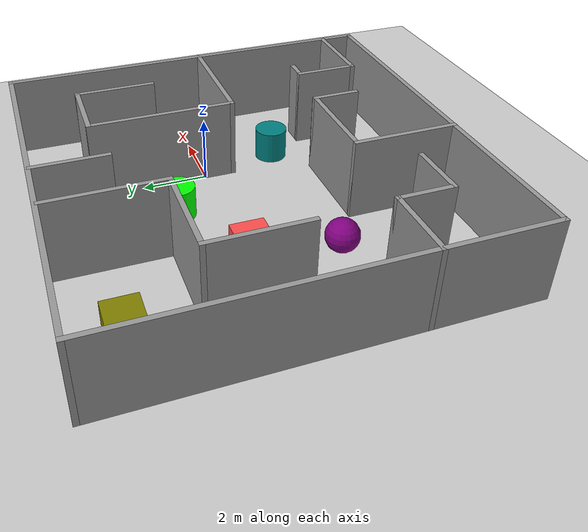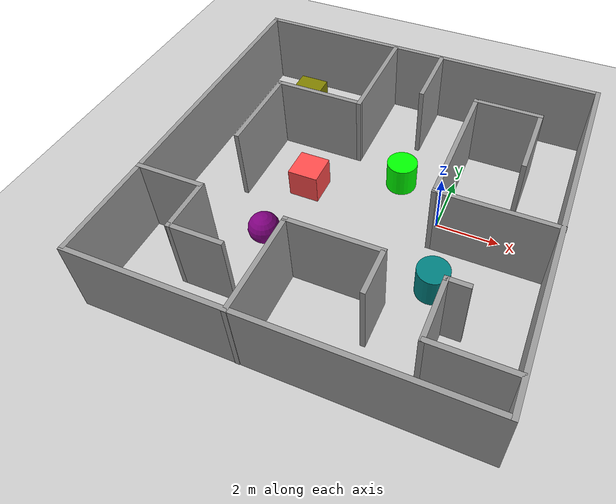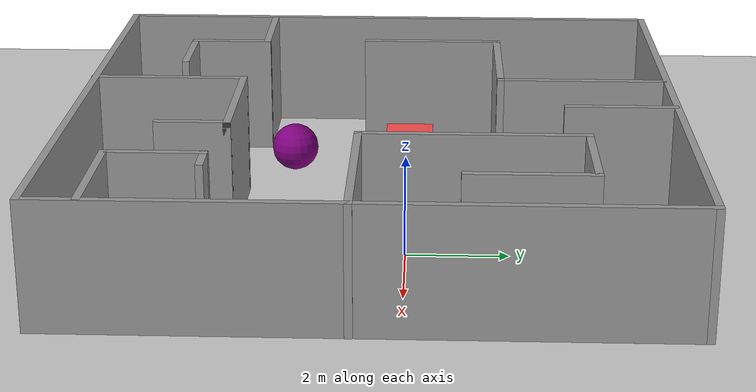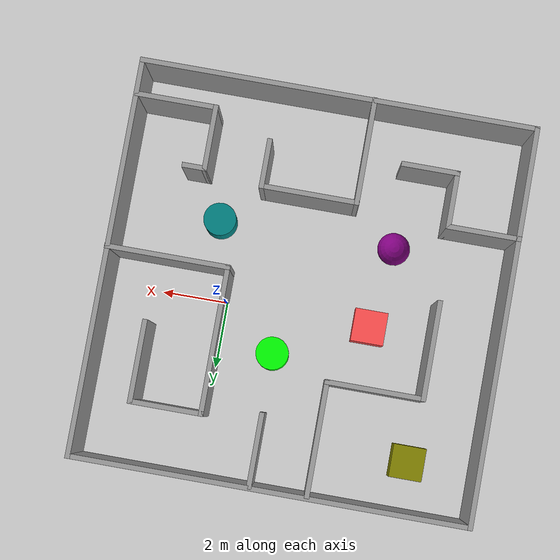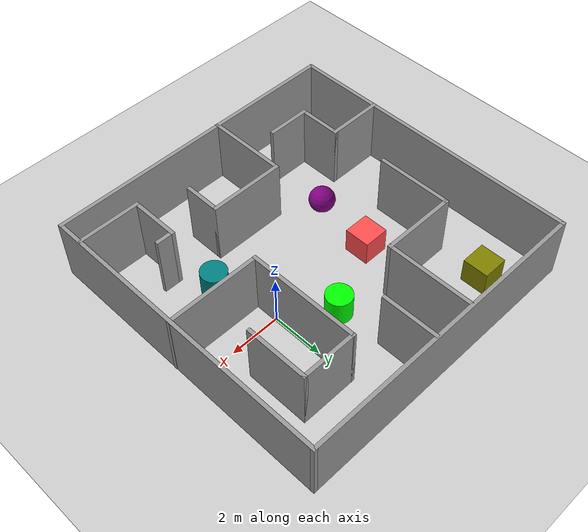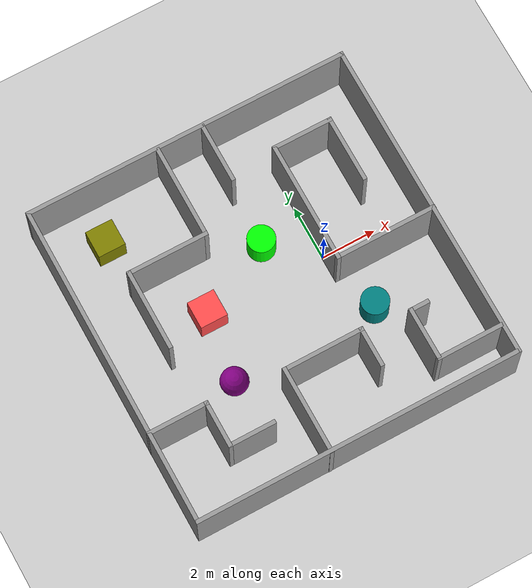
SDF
<sdf version="1.7">
 <world name="default">
  <light name="sun" type="directional">
   <pose>0 0 10 0 -0 0</pose>
   <diffuse>0.8 0.8 0.8 1</diffuse>
   <specular>0.2 0.2 0.2 1</specular>
   <attenuation>
    <range>1000</range>
    <constant>0.9</constant>
    <linear>0.01</linear>
    <quadratic>0.001</quadratic>
   </attenuation>
   <direction>-0.5 0.1 -0.9</direction>
   <spot><inner_angle>0</inner_angle><outer_angle>0</outer_angle><falloff>0</falloff></spot>
  </light>
  <model name="ground_plane">
   <static>1</static>
   <link name="link">
    <collision name="collision">
     <geometry><plane><normal>0 0 1</normal><size>100 100</size></plane></geometry>
     <surface><friction><ode><mu>100</mu><mu2>50</mu2></ode></friction></surface>
    </collision>
    <visual name="visual">
     <cast_shadows>0</cast_shadows>
     <geometry><plane><normal>0 0 1</normal><size>100 100</size></plane></geometry>
     <material>
      <script><uri>file://media/materials/scripts/gazebo.material</uri><name>Gazebo/Grey</name></script>
     </material>
    </visual>
   </link>
  </model>
  <gravity>0 0 -9.8</gravity>
  <magnetic_field>6e-06 2.3e-05 -4.2e-05</magnetic_field>
  <atmosphere type="adiabatic"/>
  <physics type="ode">
   <max_step_size>0.001</max_step_size>
   <real_time_factor>1</real_time_factor>
   <real_time_update_rate>1000</real_time_update_rate>
  </physics>
  <scene><ambient>0.4 0.4 0.4 1</ambient><background>0.7 0.7 0.7 1</background><shadows>1</shadows></scene>
  <audio><device>default</device></audio>
  <spherical_coordinates>
   <surface_model>EARTH_WGS84</surface_model>
   <latitude_deg>0</latitude_deg>
   <longitude_deg>0</longitude_deg>
   <elevation>0</elevation>
   <heading_deg>0</heading_deg>
  </spherical_coordinates>
  <model name="A1_world">
   <pose>-2.3127 -0.611248 0 0 -0 0</pose>
   <link name="Wall_11">
    <collision name="Wall_11_Collision">
     <geometry><box><size>3.5 0.15 2.5</size></box></geometry>
     <pose>0 0 1.25 0 -0 0</pose>
    </collision>
    <visual name="Wall_11_Visual">
     <pose>0 0 1.25 0 -0 0</pose>
     <geometry><box><size>3.5 0.15 2.5</size></box></geometry>
     <material>
      <script><uri>file://media/materials/scripts/gazebo.material</uri><name>Gazebo/Grey</name></script>
      <ambient>1 1 1 1</ambient>
     </material>
     <meta><layer>0</layer></meta>
    </visual>
    <pose>-1.11721 4.17838 0 0 -0 -1.5708</pose>
   </link>
   <link name="Wall_12">
    <collision name="Wall_12_Collision">
     <geometry><box><size>3 0.15 2.5</size></box></geometry>
     <pose>0 0 1.25 0 -0 0</pose>
    </collision>
    <visual name="Wall_12_Visual">
     <pose>0 0 1.25 0 -0 0</pose>
     <geometry><box><size>3 0.15 2.5</size></box></geometry>
     <material>
      <script><uri>file://media/materials/scripts/gazebo.material</uri><name>Gazebo/Grey</name></script>
      <ambient>1 1 1 1</ambient>
     </material>
     <meta><layer>0</layer></meta>
    </visual>
    <pose>-2.54221 2.50339 0 0 -0 3.14159</pose>
   </link>
   <link name="Wall_13">
    <collision name="Wall_13_Collision">
     <geometry><box><size>3 0.15 2.5</size></box></geometry>
     <pose>0 0 1.25 0 -0 0</pose>
    </collision>
    <visual name="Wall_13_Visual">
     <pose>0 0 1.25 0 -0 0</pose>
     <geometry><box><size>3 0.15 2.5</size></box></geometry>
     <material>
      <script><uri>file://media/materials/scripts/gazebo.material</uri><name>Gazebo/Grey</name></script>
      <ambient>1 1 1 1</ambient>
     </material>
     <meta><layer>0</layer></meta>
    </visual>
    <pose>-3.96721 1.07838 0 0 -0 -1.5708</pose>
   </link>
   <link name="Wall_16">
    <collision name="Wall_16_Collision">
     <geometry><box><size>2.25 0.15 2.5</size></box></geometry>
     <pose>0 0 1.25 0 -0 0</pose>
    </collision>
    <visual name="Wall_16_Visual">
     <pose>0 0 1.25 0 -0 0</pose>
     <geometry><box><size>2.25 0.15 2.5</size></box></geometry>
     <material>
      <script><uri>file://media/materials/scripts/gazebo.material</uri><name>Gazebo/Grey</name></script>
      <ambient>1 1 1 1</ambient>
     </material>
     <meta><layer>0</layer></meta>
    </visual>
    <pose>-4.88185 -2.60548 0 0 -0 0</pose>
   </link>
   <link name="Wall_17">
    <collision name="Wall_17_Collision">
     <geometry><box><size>1.75 0.15 2.5</size></box></geometry>
     <pose>0 0 1.25 0 -0 0</pose>
    </collision>
    <visual name="Wall_17_Visual">
     <pose>0 0 1.25 0 -0 0</pose>
     <geometry><box><size>1.75 0.15 2.5</size></box></geometry>
     <material>
      <script><uri>file://media/materials/scripts/gazebo.material</uri><name>Gazebo/Grey</name></script>
      <ambient>1 1 1 1</ambient>
     </material>
     <meta><layer>0</layer></meta>
    </visual>
    <pose>-3.83184 -3.40548 0 0 -0 -1.5708</pose>
   </link>
   <link name="Wall_18">
    <collision name="Wall_18_Collision">
     <geometry><box><size>1.75 0.15 2.5</size></box></geometry>
     <pose>0 0 1.25 0 -0 0</pose>
    </collision>
    <visual name="Wall_18_Visual">
     <pose>0 0 1.25 0 -0 0</pose>
     <geometry><box><size>1.75 0.15 2.5</size></box></geometry>
     <material>
      <script><uri>file://media/materials/scripts/gazebo.material</uri><name>Gazebo/Grey</name></script>
      <ambient>1 1 1 1</ambient>
     </material>
     <meta><layer>0</layer></meta>
    </visual>
    <pose>-3.03184 -4.20548 0 0 -0 0</pose>
   </link>
   <link name="Wall_20">
    <collision name="Wall_20_Collision">
     <geometry><box><size>3.25 0.15 2.5</size></box></geometry>
     <pose>0 0 1.25 0 -0 0</pose>
    </collision>
    <visual name="Wall_20_Visual">
     <pose>0 0 1.25 0 -0 0</pose>
     <geometry><box><size>3.25 0.15 2.5</size></box></geometry>
     <material>
      <script><uri>file://media/materials/scripts/gazebo.material</uri><name>Gazebo/Grey</name></script>
      <ambient>1 1 1 1</ambient>
     </material>
     <meta><layer>0</layer></meta>
    </visual>
    <pose>-1.06401 -4.3805 0 0 -0 1.5708</pose>
   </link>
   <link name="Wall_26">
    <collision name="Wall_26_Collision">
     <geometry><box><size>3 0.15 2.5</size></box></geometry>
     <pose>0 0 1.25 0 -0 0</pose>
    </collision>
    <visual name="Wall_26_Visual">
     <pose>0 0 1.25 0 -0 0</pose>
     <geometry><box><size>3 0.15 2.5</size></box></geometry>
     <material>
      <script><uri>file://media/materials/scripts/gazebo.material</uri><name>Gazebo/Grey</name></script>
      <ambient>1 1 1 1</ambient>
     </material>
     <meta><layer>0</layer></meta>
    </visual>
    <pose>0.360992 -2.8305 0 0 -0 0</pose>
   </link>
   <link name="Wall_27">
    <collision name="Wall_27_Collision">
     <geometry><box><size>1.5 0.15 2.5</size></box></geometry>
     <pose>0 0 1.25 0 -0 0</pose>
    </collision>
    <visual name="Wall_27_Visual">
     <pose>0 0 1.25 0 -0 0</pose>
     <geometry><box><size>1.5 0.15 2.5</size></box></geometry>
     <material>
      <script><uri>file://media/materials/scripts/gazebo.material</uri><name>Gazebo/Grey</name></script>
      <ambient>1 1 1 1</ambient>
     </material>
     <meta><layer>0</layer></meta>
    </visual>
    <pose>1.78599 -3.5055 0 0 -0 -1.5708</pose>
   </link>
   <link name="Wall_29">
    <collision name="Wall_29_Collision">
     <geometry><box><size>2.5 0.15 2.5</size></box></geometry>
     <pose>0 0 1.25 0 -0 0</pose>
    </collision>
    <visual name="Wall_29_Visual">
     <pose>0 0 1.25 0 -0 0</pose>
     <geometry><box><size>2.5 0.15 2.5</size></box></geometry>
     <material>
      <script><uri>file://media/materials/scripts/gazebo.material</uri><name>Gazebo/Grey</name></script>
      <ambient>1 1 1 1</ambient>
     </material>
     <meta><layer>0</layer></meta>
    </visual>
    <pose>4.70364 -4.89309 0 0 -0 3.14159</pose>
   </link>
   <link name="Wall_3">
    <collision name="Wall_3_Collision">
     <geometry><box><size>12 0.15 2.5</size></box></geometry>
     <pose>0 0 1.25 0 -0 0</pose>
    </collision>
    <visual name="Wall_3_Visual">
     <pose>0 0 1.25 0 -0 0</pose>
     <geometry><box><size>12 0.15 2.5</size></box></geometry>
     <material>
      <script><uri>file://media/materials/scripts/gazebo.material</uri><name>Gazebo/Grey</name></script>
      <ambient>1 1 1 1</ambient>
     </material>
     <meta><layer>0</layer></meta>
    </visual>
    <pose>-0.004257 -5.9195 0 0 -0 0</pose>
   </link>
   <link name="Wall_30">
    <collision name="Wall_30_Collision">
     <geometry><box><size>2 0.15 2.5</size></box></geometry>
     <pose>0 0 1.25 0 -0 0</pose>
    </collision>
    <visual name="Wall_30_Visual">
     <pose>0 0 1.25 0 -0 0</pose>
     <geometry><box><size>2 0.15 2.5</size></box></geometry>
     <material>
      <script><uri>file://media/materials/scripts/gazebo.material</uri><name>Gazebo/Grey</name></script>
      <ambient>1 1 1 1</ambient>
     </material>
     <meta><layer>0</layer></meta>
    </visual>
    <pose>3.52864 -3.9681 0 0 -0 1.5708</pose>
   </link>
   <link name="Wall_31">
    <collision name="Wall_31_Collision">
     <geometry><box><size>0.75 0.15 2.5</size></box></geometry>
     <pose>0 0 1.25 0 -0 0</pose>
    </collision>
    <visual name="Wall_31_Visual">
     <pose>0 0 1.25 0 -0 0</pose>
     <geometry><box><size>0.75 0.15 2.5</size></box></geometry>
     <material>
      <script><uri>file://media/materials/scripts/gazebo.material</uri><name>Gazebo/Grey</name></script>
      <ambient>1 1 1 1</ambient>
     </material>
     <meta><layer>0</layer></meta>
    </visual>
    <pose>3.82864 -3.0431 0 0 -0 0</pose>
   </link>
   <link name="Wall_34">
    <collision name="Wall_34_Collision">
     <geometry><box><size>3.75 0.15 2.5</size></box></geometry>
     <pose>0 0 1.25 0 -0 0</pose>
    </collision>
    <visual name="Wall_34_Visual">
     <pose>0 0 1.25 0 -0 0</pose>
     <geometry><box><size>3.75 0.15 2.5</size></box></geometry>
     <material>
      <script><uri>file://media/materials/scripts/gazebo.material</uri><name>Gazebo/Grey</name></script>
      <ambient>1 1 1 1</ambient>
     </material>
     <meta><layer>0</layer></meta>
    </visual>
    <pose>4.13184 -0.291261 0 0 -0 3.14159</pose>
   </link>
   <link name="Wall_35">
    <collision name="Wall_35_Collision">
     <geometry><box><size>4.5 0.15 2.5</size></box></geometry>
     <pose>0 0 1.25 0 -0 0</pose>
    </collision>
    <visual name="Wall_35_Visual">
     <pose>0 0 1.25 0 -0 0</pose>
     <geometry><box><size>4.5 0.15 2.5</size></box></geometry>
     <material>
      <script><uri>file://media/materials/scripts/gazebo.material</uri><name>Gazebo/Grey</name></script>
      <ambient>1 1 1 1</ambient>
     </material>
     <meta><layer>0</layer></meta>
    </visual>
    <pose>2.33184 1.88374 0 0 -0 1.5708</pose>
   </link>
   <link name="Wall_36">
    <collision name="Wall_36_Collision">
     <geometry><box><size>2.25 0.15 2.5</size></box></geometry>
     <pose>0 0 1.25 0 -0 0</pose>
    </collision>
    <visual name="Wall_36_Visual">
     <pose>0 0 1.25 0 -0 0</pose>
     <geometry><box><size>2.25 0.15 2.5</size></box></geometry>
     <material>
      <script><uri>file://media/materials/scripts/gazebo.material</uri><name>Gazebo/Grey</name></script>
      <ambient>1 1 1 1</ambient>
     </material>
     <meta><layer>0</layer></meta>
    </visual>
    <pose>3.38184 4.05874 0 0 -0 0</pose>
   </link>
   <link name="Wall_37">
    <collision name="Wall_37_Collision">
     <geometry><box><size>2.5 0.15 2.5</size></box></geometry>
     <pose>0 0 1.25 0 -0 0</pose>
    </collision>
    <visual name="Wall_37_Visual">
     <pose>0 0 1.25 0 -0 0</pose>
     <geometry><box><size>2.5 0.15 2.5</size></box></geometry>
     <material>
      <script><uri>file://media/materials/scripts/gazebo.material</uri><name>Gazebo/Grey</name></script>
      <ambient>1 1 1 1</ambient>
     </material>
     <meta><layer>0</layer></meta>
    </visual>
    <pose>4.43184 2.88374 0 0 -0 -1.5708</pose>
   </link>
   <link name="Wall_39">
    <collision name="Wall_39_Collision">
     <geometry><box><size>2.25 0.15 2.5</size></box></geometry>
     <pose>0 0 1.25 0 -0 0</pose>
    </collision>
    <visual name="Wall_39_Visual">
     <pose>0 0 1.25 0 -0 0</pose>
     <geometry><box><size>2.25 0.15 2.5</size></box></geometry>
     <material>
      <script><uri>file://media/materials/scripts/gazebo.material</uri><name>Gazebo/Grey</name></script>
      <ambient>1 1 1 1</ambient>
     </material>
     <meta><layer>0</layer></meta>
    </visual>
    <pose>0.585204 4.82998 0 0 -0 -1.5708</pose>
   </link>
   <link name="Wall_6">
    <collision name="Wall_6_Collision">
     <geometry><box><size>12 0.15 2.5</size></box></geometry>
     <pose>0 0 1.25 0 -0 0</pose>
    </collision>
    <visual name="Wall_6_Visual">
     <pose>0 0 1.25 0 -0 0</pose>
     <geometry><box><size>12 0.15 2.5</size></box></geometry>
     <material>
      <script><uri>file://media/materials/scripts/gazebo.material</uri><name>Gazebo/Grey</name></script>
      <ambient>1 1 1 1</ambient>
     </material>
     <meta><layer>0</layer></meta>
    </visual>
    <pose>5.92074 0.005503 0 0 -0 1.5708</pose>
   </link>
   <link name="Wall_7">
    <collision name="Wall_7_Collision">
     <geometry><box><size>12 0.15 2.5</size></box></geometry>
     <pose>0 0 1.25 0 -0 0</pose>
    </collision>
    <visual name="Wall_7_Visual">
     <pose>0 0 1.25 0 -0 0</pose>
     <geometry><box><size>12 0.15 2.5</size></box></geometry>
     <material>
      <script><uri>file://media/materials/scripts/gazebo.material</uri><name>Gazebo/Grey</name></script>
      <ambient>1 1 1 1</ambient>
     </material>
     <meta><layer>0</layer></meta>
    </visual>
    <pose>-0.004257 5.9305 0 0 -0 3.14159</pose>
   </link>
   <link name="Wall_8">
    <collision name="Wall_8_Collision">
     <geometry><box><size>12 0.15 2.5</size></box></geometry>
     <pose>0 0 1.25 0 -0 0</pose>
    </collision>
    <visual name="Wall_8_Visual">
     <pose>0 0 1.25 0 -0 0</pose>
     <geometry><box><size>12 0.15 2.5</size></box></geometry>
     <material>
      <script><uri>file://media/materials/scripts/gazebo.material</uri><name>Gazebo/Grey</name></script>
      <ambient>1 1 1 1</ambient>
     </material>
     <meta><layer>0</layer></meta>
    </visual>
    <pose>-5.92926 0.005503 0 0 -0 -1.5708</pose>
   </link>
   <static>1</static>
  </model>
  <model name="unit_box_0">
   <link name="link">
    <inertial>
     <mass>1</mass>
     <inertia>
      <ixx>0.166667</ixx>
      <ixy>0</ixy>
      <ixz>0</ixz>
      <iyy>0.166667</iyy>
      <iyz>0</iyz>
      <izz>0.166667</izz>
     </inertia>
    </inertial>
    <visual name="visual">
     <geometry><box><size>1 1 1</size></box></geometry>
     <material>
      <script><name>Gazebo/Grey</name><uri>file://media/materials/scripts/gazebo.material</uri></script>
      <shader type="pixel"><normal_map>__default__</normal_map></shader>
      <ambient>1 0.3 0.3 1</ambient>
      <diffuse>0.7 0.7 0.7 1</diffuse>
      <specular>0.01 0.01 0.01 1</specular>
      <emissive>0 0 0 1</emissive>
     </material>
    </visual>
    <collision name="collision">
     <geometry><box><size>1 1 1</size></box></geometry>
     <surface>
      <friction>
       <ode><mu>1</mu><mu2>1</mu2><fdir1>0 0 0</fdir1><slip1>0</slip1><slip2>0</slip2></ode>
       <torsional>
        <coefficient>1</coefficient>
        <patch_radius>0</patch_radius>
        <surface_radius>0</surface_radius>
        <use_patch_radius>1</use_patch_radius>
        <ode><slip>0</slip></ode>
       </torsional>
      </friction>
      <bounce><restitution_coefficient>0</restitution_coefficient><threshold>1e+06</threshold></bounce>
      <contact>
       <collide_without_contact>0</collide_without_contact>
       <collide_without_contact_bitmask>1</collide_without_contact_bitmask>
       <collide_bitmask>1</collide_bitmask>
       <ode>
        <soft_cfm>0</soft_cfm>
        <soft_erp>0.2</soft_erp>
        <kp>1e+13</kp>
        <kd>1</kd>
        <max_vel>0.01</max_vel>
        <min_depth>0</min_depth>
       </ode>
       <bullet>
        <split_impulse>1</split_impulse>
        <split_impulse_penetration_threshold>-0.01</split_impulse_penetration_threshold>
        <soft_cfm>0</soft_cfm>
        <soft_erp>0.2</soft_erp>
        <kp>1e+13</kp>
        <kd>1</kd>
       </bullet>
      </contact>
     </surface>
    </collision>
   </link>
   <static>0</static>
   <pose>-4.41873 0.001207 0.5 0 -0 0</pose>
  </model>
  <model name="unit_cylinder">
   <link name="link">
    <inertial>
     <mass>1</mass>
     <inertia><ixx>0.145833</ixx><ixy>0</ixy><ixz>0</ixz><iyy>0.145833</iyy><iyz>0</iyz><izz>0.125</izz></inertia>
    </inertial>
    <visual name="visual">
     <geometry><cylinder><radius>0.5</radius><length>1</length></cylinder></geometry>
     <material>
      <script><name>Gazebo/Grey</name><uri>file://media/materials/scripts/gazebo.material</uri></script>
      <shader type="pixel"><normal_map>__default__</normal_map></shader>
      <ambient>0 1 0 0</ambient>
      <diffuse>0.7 0.7 0.7 1</diffuse>
      <specular>0.01 0.01 0.01 1</specular>
      <emissive>0 0 0 1</emissive>
     </material>
    </visual>
    <collision name="collision">
     <geometry><cylinder><radius>0.5</radius><length>1</length></cylinder></geometry>
     <surface>
      <friction>
       <ode><mu>1</mu><mu2>1</mu2><fdir1>0 0 0</fdir1><slip1>0</slip1><slip2>0</slip2></ode>
       <torsional>
        <coefficient>1</coefficient>
        <patch_radius>0</patch_radius>
        <surface_radius>0</surface_radius>
        <use_patch_radius>1</use_patch_radius>
        <ode><slip>0</slip></ode>
       </torsional>
      </friction>
      <bounce><restitution_coefficient>0</restitution_coefficient><threshold>1e+06</threshold></bounce>
      <contact>
       <collide_without_contact>0</collide_without_contact>
       <collide_without_contact_bitmask>1</collide_without_contact_bitmask>
       <collide_bitmask>1</collide_bitmask>
       <ode>
        <soft_cfm>0</soft_cfm>
        <soft_erp>0.2</soft_erp>
        <kp>1e+13</kp>
        <kd>1</kd>
        <max_vel>0.01</max_vel>
        <min_depth>0</min_depth>
       </ode>
       <bullet>
        <split_impulse>1</split_impulse>
        <split_impulse_penetration_threshold>-0.01</split_impulse_penetration_threshold>
        <soft_cfm>0</soft_cfm>
        <soft_erp>0.2</soft_erp>
        <kp>1e+13</kp>
        <kd>1</kd>
       </bullet>
      </contact>
     </surface>
    </collision>
   </link>
   <static>0</static>
   <pose>-1.66525 1.3034 0.5 0 -0 0</pose>
  </model>
  <model name="unit_cylinder_0">
   <link name="link">
    <inertial>
     <mass>1</mass>
     <inertia><ixx>0.145833</ixx><ixy>0</ixy><ixz>0</ixz><iyy>0.145833</iyy><iyz>0</iyz><izz>0.125</izz></inertia>
    </inertial>
    <visual name="visual">
     <geometry><cylinder><radius>0.5</radius><length>1</length></cylinder></geometry>
     <material>
      <script><name>Gazebo/Grey</name><uri>file://media/materials/scripts/gazebo.material</uri></script>
      <shader type="pixel"><normal_map>__default__</normal_map></shader>
      <ambient>0 0.5 0.5 0</ambient>
      <diffuse>0.7 0.7 0.7 1</diffuse>
      <specular>0.01 0.01 0.01 1</specular>
      <emissive>0 0 0 1</emissive>
     </material>
    </visual>
    <collision name="collision">
     <geometry><cylinder><radius>0.5</radius><length>1</length></cylinder></geometry>
     <surface>
      <friction>
       <ode><mu>1</mu><mu2>1</mu2><fdir1>0 0 0</fdir1><slip1>0</slip1><slip2>0</slip2></ode>
       <torsional>
        <coefficient>1</coefficient>
        <patch_radius>0</patch_radius>
        <surface_radius>0</surface_radius>
        <use_patch_radius>1</use_patch_radius>
        <ode><slip>0</slip></ode>
       </torsional>
      </friction>
      <bounce><restitution_coefficient>0</restitution_coefficient><threshold>1e+06</threshold></bounce>
      <contact>
       <collide_without_contact>0</collide_without_contact>
       <collide_without_contact_bitmask>1</collide_without_contact_bitmask>
       <collide_bitmask>1</collide_bitmask>
       <ode>
        <soft_cfm>0</soft_cfm>
        <soft_erp>0.2</soft_erp>
        <kp>1e+13</kp>
        <kd>1</kd>
        <max_vel>0.01</max_vel>
        <min_depth>0</min_depth>
       </ode>
       <bullet>
        <split_impulse>1</split_impulse>
        <split_impulse_penetration_threshold>-0.01</split_impulse_penetration_threshold>
        <soft_cfm>0</soft_cfm>
        <soft_erp>0.2</soft_erp>
        <kp>1e+13</kp>
        <kd>1</kd>
       </bullet>
      </contact>
     </surface>
    </collision>
   </link>
   <static>0</static>
   <pose>0.618036 -2.42841 0.5 0 -0 0</pose>
  </model>
  <model name="unit_sphere">
   <link name="link">
    <inertial>
     <mass>1</mass>
     <inertia><ixx>0.1</ixx><ixy>0</ixy><ixz>0</ixz><iyy>0.1</iyy><iyz>0</iyz><izz>0.1</izz></inertia>
    </inertial>
    <visual name="visual">
     <geometry><sphere><radius>0.5</radius></sphere></geometry>
     <material>
      <script><name>Gazebo/Grey</name><uri>file://media/materials/scripts/gazebo.material</uri></script>
      <shader type="pixel"><normal_map>__default__</normal_map></shader>
      <ambient>0.5 0 0.5 0</ambient>
      <diffuse>0.7 0.7 0.7 1</diffuse>
      <specular>0.01 0.01 0.01 1</specular>
      <emissive>0 0 0 1</emissive>
     </material>
    </visual>
    <collision name="collision">
     <geometry><sphere><radius>0.5</radius></sphere></geometry>
     <surface>
      <friction>
       <ode><mu>1</mu><mu2>1</mu2><fdir1>0 0 0</fdir1><slip1>0</slip1><slip2>0</slip2></ode>
       <torsional>
        <coefficient>1</coefficient>
        <patch_radius>0</patch_radius>
        <surface_radius>0</surface_radius>
        <use_patch_radius>1</use_patch_radius>
        <ode><slip>0</slip></ode>
       </torsional>
      </friction>
      <bounce><restitution_coefficient>0</restitution_coefficient><threshold>1e+06</threshold></bounce>
      <contact>
       <collide_without_contact>0</collide_without_contact>
       <collide_without_contact_bitmask>1</collide_without_contact_bitmask>
       <collide_bitmask>1</collide_bitmask>
       <ode>
        <soft_cfm>0</soft_cfm>
        <soft_erp>0.2</soft_erp>
        <kp>1e+13</kp>
        <kd>1</kd>
        <max_vel>0.01</max_vel>
        <min_depth>0</min_depth>
       </ode>
       <bullet>
        <split_impulse>1</split_impulse>
        <split_impulse_penetration_threshold>-0.01</split_impulse_penetration_threshold>
        <soft_cfm>0</soft_cfm>
        <soft_erp>0.2</soft_erp>
        <kp>1e+13</kp>
        <kd>1</kd>
       </bullet>
      </contact>
     </surface>
    </collision>
   </link>
   <static>0</static>
   <pose>-4.75671 -2.50452 0.5 0 -0 0</pose>
  </model>
  <model name="unit_box">
   <link name="link">
    <inertial>
     <mass>1</mass>
     <inertia>
      <ixx>0.166667</ixx>
      <ixy>0</ixy>
      <ixz>0</ixz>
      <iyy>0.166667</iyy>
      <iyz>0</iyz>
      <izz>0.166667</izz>
     </inertia>
    </inertial>
    <visual name="visual">
     <geometry><box><size>1 1 1</size></box></geometry>
     <material>
      <script><name>Gazebo/Grey</name><uri>file://media/materials/scripts/gazebo.material</uri></script>
      <shader type="pixel"><normal_map>__default__</normal_map></shader>
      <ambient>0.5 0.5 0 0</ambient>
      <diffuse>0.7 0.7 0.7 1</diffuse>
      <specular>0.01 0.01 0.01 1</specular>
      <emissive>0 0 0 1</emissive>
     </material>
    </visual>
    <collision name="collision">
     <geometry><box><size>1 1 1</size></box></geometry>
     <surface>
      <friction>
       <ode><mu>1</mu><mu2>1</mu2><fdir1>0 0 0</fdir1><slip1>0</slip1><slip2>0</slip2></ode>
       <torsional>
        <coefficient>1</coefficient>
        <patch_radius>0</patch_radius>
        <surface_radius>0</surface_radius>
        <use_patch_radius>1</use_patch_radius>
        <ode><slip>0</slip></ode>
       </torsional>
      </friction>
      <bounce><restitution_coefficient>0</restitution_coefficient><threshold>1e+06</threshold></bounce>
      <contact>
       <collide_without_contact>0</collide_without_contact>
       <collide_without_contact_bitmask>1</collide_without_contact_bitmask>
       <collide_bitmask>1</collide_bitmask>
       <ode>
        <soft_cfm>0</soft_cfm>
        <soft_erp>0.2</soft_erp>
        <kp>1e+13</kp>
        <kd>1</kd>
        <max_vel>0.01</max_vel>
        <min_depth>0</min_depth>
       </ode>
       <bullet>
        <split_impulse>1</split_impulse>
        <split_impulse_penetration_threshold>-0.01</split_impulse_penetration_threshold>
        <soft_cfm>0</soft_cfm>
        <soft_erp>0.2</soft_erp>
        <kp>1e+13</kp>
        <kd>1</kd>
       </bullet>
      </contact>
     </surface>
    </collision>
   </link>
   <static>0</static>
   <pose>-6.24722 3.82521 0.5 0 -0 0</pose>
  </model>
 </world>
</sdf>
